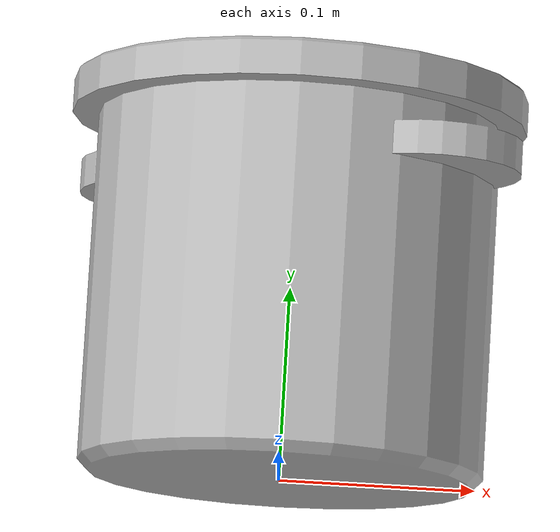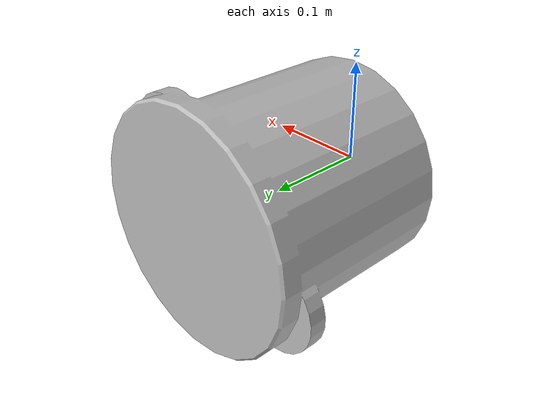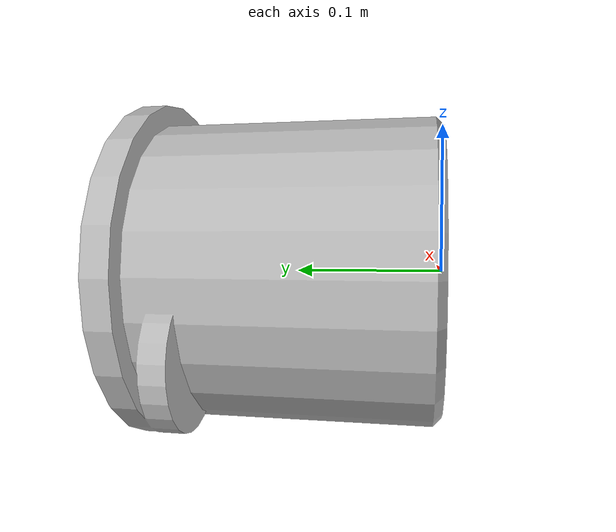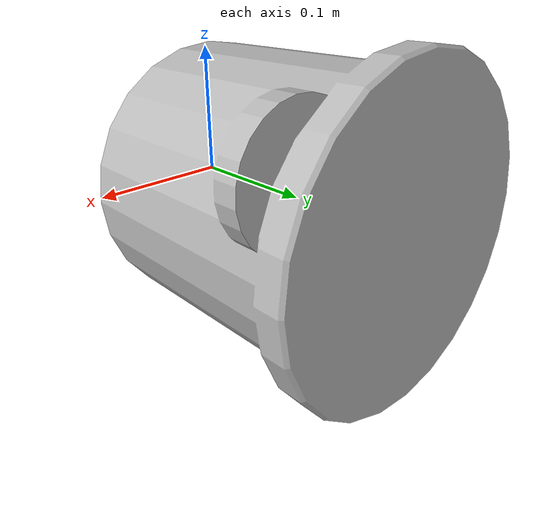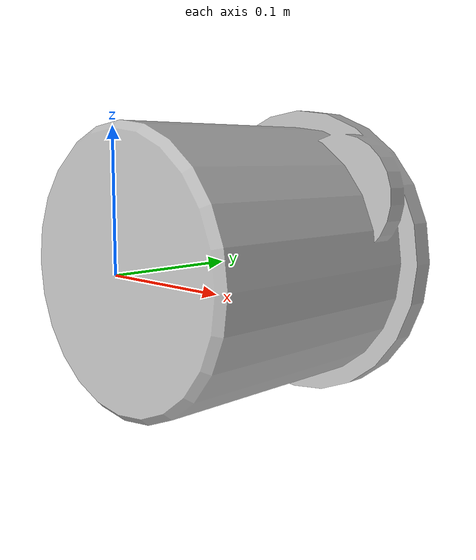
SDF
<?xml version="1.0" ?>
<sdf version="1.4">
  <model name="shelf2_jar2_1">
    <link name="body">
      <pose>0 0 0 0 0 0</pose>
      <inertial>
        <pose>   0.000011   0.131571  -0.000084 0 0 0</pose>
        <mass>0.5</mass>
        <inertia>
          <ixx>0.01</ixx>
          <ixy>0</ixy>
          <ixz>0</ixz>
          <iyy>0.01</iyy>
          <iyz>0</iyz>
          <izz>0.01</izz>
        </inertia>
      </inertial>
      <collision name="collision">
        <geometry>
          <mesh>
            <uri>model://bookshelf/shelf2_items/jar2_1/jar2_1.dae</uri>
          </mesh>
        </geometry>
      </collision>
      <visual name="visual">
        <geometry>
          <mesh>
            <uri>model://bookshelf/shelf2_items/jar2_1/jar2_1.dae</uri>
          </mesh>
        </geometry>
      </visual>
    </link>
  </model>
</sdf>
